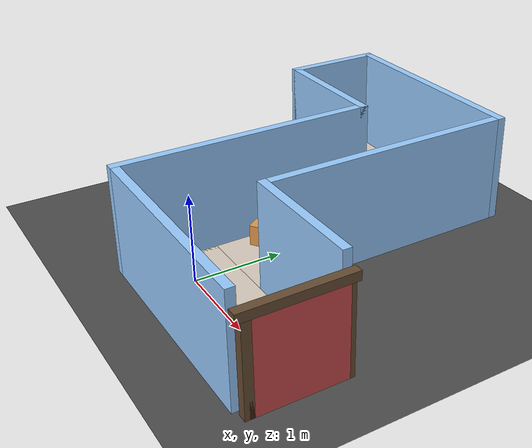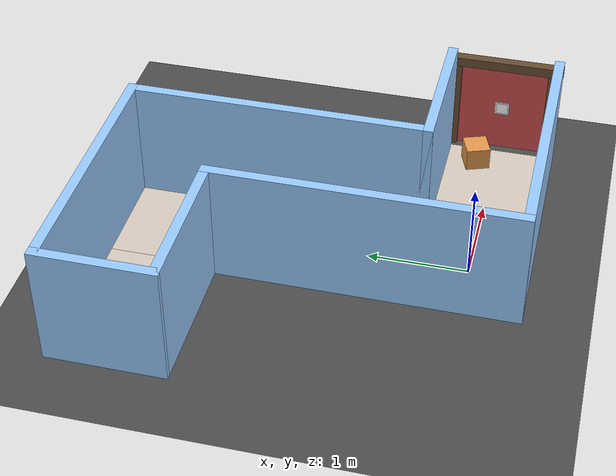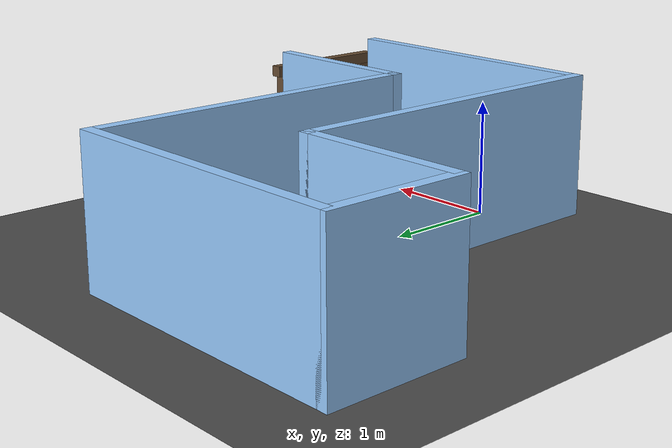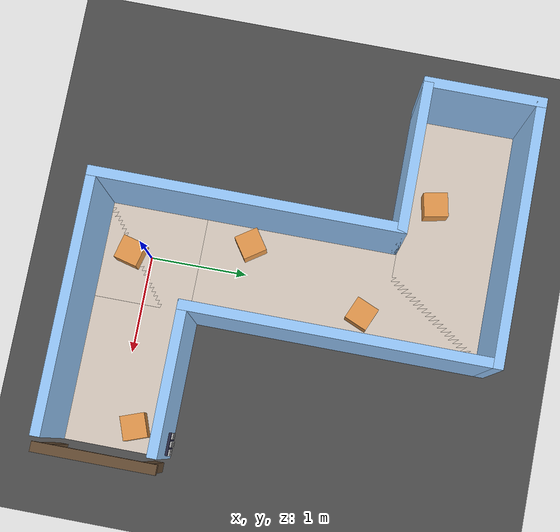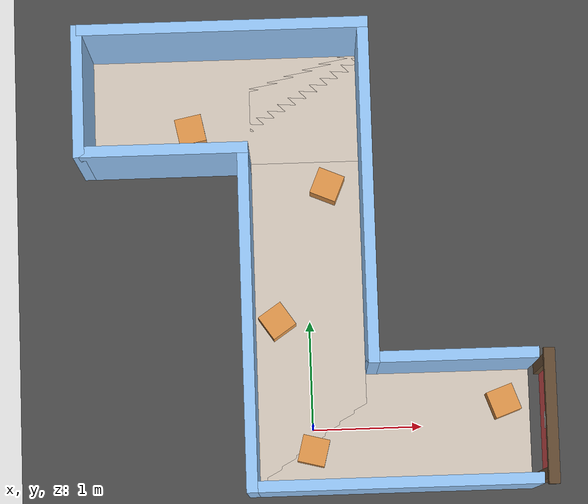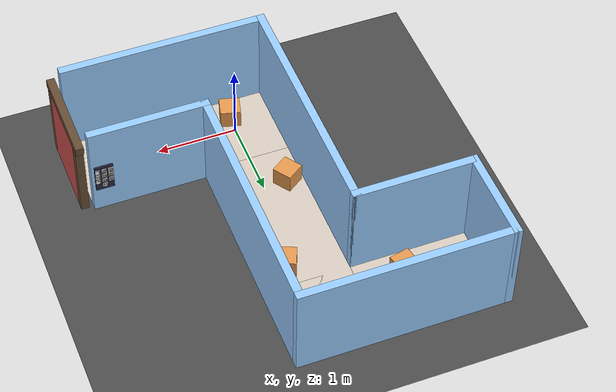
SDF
<?xml version="1.0" ?>
<sdf version="1.6">
  <world name="escape_room">

    <!-- Basic physics and lighting -->
    <physics name='default_physics' default='0' type='ode'>
      <gravity>0 0 -9.8066</gravity>
    </physics>

    <light type="directional" name="sun">
      <cast_shadows>true</cast_shadows>
      <pose>0 0 10 0 0 0</pose>
      <diffuse>0.8 0.8 0.8 1</diffuse>
      <specular>0.2 0.2 0.2 1</specular>
      <direction>-0.5 0.1 -0.9</direction>
    </light>

    <!-- Ground plane -->
    <model name="ground_plane">
      <static>true</static>
      <link name="link">
        <collision name="collision">
          <geometry>
            <plane>
              <normal>0 0 1</normal>
              <size>50 50</size>
            </plane>
          </geometry>
        </collision>
        <visual name="visual">
          <geometry>
            <plane>
              <normal>0 0 1</normal>
              <size>50 50</size>
            </plane>
          </geometry>
          <material>
            <ambient>0.3 0.3 0.3 1</ambient>
            <diffuse>0.3 0.3 0.3 1</diffuse>
          </material>
        </visual>
      </link>
    </model>

    <!-- Corridor floors -->
    <include>
      <uri>model://corridor_floor_bottom</uri>
      <name>floor_bottom</name>
      <pose>0.75 0 0.005 0 0 0</pose>
    </include>

    <include>
      <uri>model://corridor_floor_vertical</uri>
      <name>floor_vertical</name>
      <pose>0 1.5 0.005 0 0 0</pose>
    </include>

    <include>
      <uri>model://corridor_floor_top</uri>
      <name>floor_top</name>
      <pose>-0.75 3 0.005 0 0 0</pose>
    </include>

    <!-- Corridor walls -->
    <include>
      <uri>model://corridor_wall_bottom_south</uri>
      <name>wall_bottom_south</name>
      <pose>0.75 -0.55 0.625 0 0 0</pose>
    </include>

    <include>
      <uri>model://corridor_wall_bottom_north</uri>
      <name>wall_bottom_north</name>
      <pose>1.25 0.55 0.625 0 0 0</pose>
    </include>

    <include>
      <uri>model://corridor_wall_vertical_east</uri>
      <name>wall_vertical_east</name>
      <pose>0.55 2 0.625 0 0 0</pose>
    </include>

    <include>
      <uri>model://corridor_wall_vertical_west</uri>
      <name>wall_vertical_west</name>
      <pose>-0.55 0.95 0.625 0 0 0</pose>
    </include>

    <include>
      <uri>model://corridor_wall_top_south</uri>
      <name>wall_top_south</name>
      <pose>-1.25 2.45 0.625 0 0 0</pose>
    </include>

    <include>
      <uri>model://corridor_wall_top_north</uri>
      <name>wall_top_north</name>
      <pose>-0.7 3.55 0.625 0 0 0</pose>
    </include>

    <include>
      <uri>model://corridor_wall_top_west</uri>
      <name>wall_top_west</name>
      <pose>-2 3 0.625 0 0 0</pose>
    </include>

    <!-- Sliding exit door at the corridor end -->
    <include>
      <uri>model://exit_door</uri>
      <name>exit_door_main</name>
      <pose>2.1 0 0 0 0 1.5708</pose>
      <scale>0.5 0.5 0.5</scale>
    </include>

    <!-- Corridor obstacles -->
    <include>
      <uri>model://box_obstacle</uri>
      <name>obstacle_bottom_east</name>
      <pose>1.75 0.2 0.125 0 0 0.35</pose>
      <scale>1.4 0.8 1.1</scale>
    </include>

    <include>
      <uri>model://box_obstacle</uri>
      <name>obstacle_bottom_west</name>
      <pose>0.0 -0.2 0.125 0 0 -0.25</pose>
      <scale>0.8 1.2 0.9</scale>
    </include>

    <include>
      <uri>model://box_obstacle</uri>
      <name>obstacle_corner</name>
      <pose>-0.3 1.0 0.125 0 0 0.6</pose>
      <scale>1.1 1.0 1.0</scale>
    </include>

    <include>
      <uri>model://box_obstacle</uri>
      <name>obstacle_vertical_north</name>
      <pose>0.2 2.25 0.125 0 0 -0.4</pose>
      <scale>0.9 1.3 1.2</scale>
    </include>

    <include>
      <uri>model://box_obstacle</uri>
      <name>obstacle_top</name>
      <pose>-1.05 2.80 0.125 0 0 0.2</pose>
      <scale>1.3 0.9 1.0</scale>
    </include>

    <!-- Keypad mounted on the north wall near the exit -->
    <include>
      <uri>model://keypad</uri>
      <name>keypad_panel</name>
      <pose>1.85 0.625 0.55 0 0 0</pose>
      <scale>0.5 0.5 0.5</scale>
    </include>

    <plugin
      filename="gz-sim-physics-system"
      name="gz::sim::systems::Physics">
    </plugin>
    <plugin
      filename="gz-sim-user-commands-system"
      name="gz::sim::systems::UserCommands">
    </plugin>
    <plugin
      filename="gz-sim-scene-broadcaster-system"
      name="gz::sim::systems::SceneBroadcaster">
    </plugin>

  </world>
</sdf>

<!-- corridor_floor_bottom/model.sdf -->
<sdf version="1.6">
  <model name="corridor_floor_bottom">
    <static>true</static>
    <link name="link">
      <pose>0 0 0 0 0 0</pose>
      <visual name="visual">
        <geometry>
          <box>
            <size>2.5 1 0.01</size>
          </box>
        </geometry>
        <material>
          <ambient>0.8 0.75 0.7 1</ambient>
          <diffuse>0.85 0.8 0.75 1</diffuse>
          <specular>0.2 0.2 0.2 1</specular>
        </material>
      </visual>
      <collision name="collision">
        <geometry>
          <box>
            <size>3 1 0.01</size>
          </box>
        </geometry>
      </collision>
    </link>
  </model>
</sdf>

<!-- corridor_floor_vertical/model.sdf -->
<sdf version="1.6">
  <model name="corridor_floor_vertical">
    <static>true</static>
    <link name="link">
      <pose>0 0 0 0 0 0</pose>
      <visual name="visual">
        <geometry>
          <box>
            <size>1 4 0.01</size>
          </box>
        </geometry>
        <material>
          <ambient>0.8 0.75 0.7 1</ambient>
          <diffuse>0.85 0.8 0.75 1</diffuse>
          <specular>0.2 0.2 0.2 1</specular>
        </material>
      </visual>
      <collision name="collision">
        <geometry>
          <box>
            <size>1 4 0.01</size>
          </box>
        </geometry>
      </collision>
    </link>
  </model>
</sdf>

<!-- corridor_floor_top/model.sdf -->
<sdf version="1.6">
  <model name="corridor_floor_top">
    <static>true</static>
    <link name="link">
      <pose>0 0 0 0 0 0</pose>
      <visual name="visual">
        <geometry>
          <box>
            <size>2.5 1 0.01</size>
          </box>
        </geometry>
        <material>
          <ambient>0.8 0.75 0.7 1</ambient>
          <diffuse>0.85 0.8 0.75 1</diffuse>
          <specular>0.2 0.2 0.2 1</specular>
        </material>
      </visual>
      <collision name="collision">
        <geometry>
          <box>
            <size>3 1 0.01</size>
          </box>
        </geometry>
      </collision>
    </link>
  </model>
</sdf>

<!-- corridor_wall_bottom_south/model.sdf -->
<sdf version="1.6">
  <model name="corridor_wall_bottom_south">
    <static>true</static>
    <link name="link">
      <pose>0 0 0 0 0 0</pose>
      <visual name="visual">
        <geometry>
          <box>
            <size>2.5 0.1 1.25</size>
          </box>
        </geometry>
        <material>
          <ambient>0.5 0.7 0.9 1</ambient>
          <diffuse>0.6 0.8 1.0 1</diffuse>
          <specular>0.15 0.15 0.2 1</specular>
        </material>
      </visual>
      <collision name="collision">
        <geometry>
          <box>
            <size>2.5 0.1 1.25</size>
          </box>
        </geometry>
      </collision>
    </link>
  </model>
</sdf>

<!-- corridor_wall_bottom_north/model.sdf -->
<sdf version="1.6">
  <model name="corridor_wall_bottom_north">
    <static>true</static>
    <link name="link">
      <pose>0 0 0 0 0 0</pose>
      <visual name="visual">
        <geometry>
          <box>
            <size>1.5 0.1 1.25</size>
          </box>
        </geometry>
        <material>
          <ambient>0.5 0.7 0.9 1</ambient>
          <diffuse>0.6 0.8 1.0 1</diffuse>
          <specular>0.15 0.15 0.2 1</specular>
        </material>
      </visual>
      <collision name="collision">
        <geometry>
          <box>
            <size>1.5 0.1 1.25</size>
          </box>
        </geometry>
      </collision>
    </link>
  </model>
</sdf>

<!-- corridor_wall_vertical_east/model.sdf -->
<sdf version="1.6">
  <model name="corridor_wall_vertical_east">
    <static>true</static>
    <link name="link">
      <pose>0 0 0 0 0 0</pose>
      <visual name="visual">
        <geometry>
          <box>
            <size>0.1 3 1.25</size>
          </box>
        </geometry>
        <material>
          <ambient>0.5 0.7 0.9 1</ambient>
          <diffuse>0.6 0.8 1.0 1</diffuse>
          <specular>0.15 0.15 0.2 1</specular>
        </material>
      </visual>
      <collision name="collision">
        <geometry>
          <box>
            <size>0.1 4 1.25</size>
          </box>
        </geometry>
      </collision>
    </link>
  </model>
</sdf>

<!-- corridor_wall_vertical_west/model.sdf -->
<sdf version="1.6">
  <model name="corridor_wall_vertical_west">
    <static>true</static>
    <link name="link">
      <pose>0 0 0 0 0 0</pose>
      <visual name="visual">
        <geometry>
          <box>
            <size>0.1 3.1 1.25</size>
          </box>
        </geometry>
        <material>
          <ambient>0.5 0.7 0.9 1</ambient>
          <diffuse>0.6 0.8 1.0 1</diffuse>
          <specular>0.15 0.15 0.2 1</specular>
        </material>
      </visual>
      <collision name="collision">
        <geometry>
          <box>
            <size>0.1 3 1.25</size>
          </box>
        </geometry>
      </collision>
    </link>
  </model>
</sdf>

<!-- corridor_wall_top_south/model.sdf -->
<sdf version="1.6">
  <model name="corridor_wall_top_south">
    <static>true</static>
    <link name="link">
      <pose>0 0 0 0 0 0</pose>
      <visual name="visual">
        <geometry>
          <box>
            <size>1.5 0.1 1.25</size>
          </box>
        </geometry>
        <material>
          <ambient>0.5 0.7 0.9 1</ambient>
          <diffuse>0.6 0.8 1.0 1</diffuse>
          <specular>0.15 0.15 0.2 1</specular>
        </material>
      </visual>
      <collision name="collision">
        <geometry>
          <box>
            <size>1.5 0.1 1.25</size>
          </box>
        </geometry>
      </collision>
    </link>
  </model>
</sdf>

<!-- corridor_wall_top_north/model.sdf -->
<sdf version="1.6">
  <model name="corridor_wall_top_north">
    <static>true</static>
    <link name="link">
      <pose>0 0 0 0 0 0</pose>
      <visual name="visual">
        <geometry>
          <box>
            <size>2.6 0.1 1.25</size>
          </box>
        </geometry>
        <material>
          <ambient>0.5 0.7 0.9 1</ambient>
          <diffuse>0.6 0.8 1.0 1</diffuse>
          <specular>0.15 0.15 0.2 1</specular>
        </material>
      </visual>
      <collision name="collision">
        <geometry>
          <box>
            <size>2.5 0.1 1.25</size>
          </box>
        </geometry>
      </collision>
    </link>
  </model>
</sdf>

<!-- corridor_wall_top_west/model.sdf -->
<sdf version="1.6">
  <model name="corridor_wall_top_west">
    <static>true</static>
    <link name="link">
      <pose>0 0 0 0 0 0</pose>
      <visual name="visual">
        <geometry>
          <box>
            <size>0.1 1.2 1.25</size>
          </box>
        </geometry>
        <material>
          <ambient>0.5 0.7 0.9 1</ambient>
          <diffuse>0.6 0.8 1.0 1</diffuse>
          <specular>0.15 0.15 0.2 1</specular>
        </material>
      </visual>
      <collision name="collision">
        <geometry>
          <box>
            <size>0.1 1.2 1.25</size>
          </box>
        </geometry>
      </collision>
    </link>
  </model>
</sdf>

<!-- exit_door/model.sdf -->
<sdf version="1.6">
  <model name="exit_door">
    <static>false</static>

    <!-- Rigid door frame that stays fixed to the world -->
    <link name="door_frame">
      <pose>0 0 0 0 0 0</pose>
      <inertial>
        <mass>10.0</mass>
        <inertia>
          <ixx>1.0</ixx>
          <ixy>0</ixy>
          <ixz>0</ixz>
          <iyy>1.0</iyy>
          <iyz>0</iyz>
          <izz>1.0</izz>
        </inertia>
      </inertial>

      <!-- Left frame upright -->
      <collision name="frame_left_collision">
        <pose>-0.5 0 0.5 0 0 0</pose>
        <geometry>
          <box>
            <size>0.1 0.1 1.0</size>
          </box>
        </geometry>
      </collision>
      <visual name="frame_left_visual">
        <pose>-0.5 0 0.5 0 0 0</pose>
        <geometry>
          <box>
            <size>0.1 0.1 1.0</size>
          </box>
        </geometry>
        <material>
          <ambient>0.4 0.3 0.2 1</ambient>
          <diffuse>0.4 0.3 0.2 1</diffuse>
          <specular>0.1 0.1 0.1 1</specular>
        </material>
      </visual>

      <!-- Right frame upright -->
      <collision name="frame_right_collision">
        <pose>0.5 0 0.5 0 0 0</pose>
        <geometry>
          <box>
            <size>0.1 0.1 1.0</size>
          </box>
        </geometry>
      </collision>
      <visual name="frame_right_visual">
        <pose>0.5 0 0.5 0 0 0</pose>
        <geometry>
          <box>
            <size>0.1 0.1 1.0</size>
          </box>
        </geometry>
        <material>
          <ambient>0.4 0.3 0.2 1</ambient>
          <diffuse>0.4 0.3 0.2 1</diffuse>
          <specular>0.1 0.1 0.1 1</specular>
        </material>
      </visual>

      <!-- Frame top beam -->
      <collision name="frame_top_collision">
        <pose>0 0 1.05 0 0 0</pose>
        <geometry>
          <box>
            <size>1.2 0.1 0.1</size>
          </box>
        </geometry>
      </collision>
      <visual name="frame_top_visual">
        <pose>0 0 1.05 0 0 0</pose>
        <geometry>
          <box>
            <size>1.2 0.1 0.1</size>
          </box>
        </geometry>
        <material>
          <ambient>0.4 0.3 0.2 1</ambient>
          <diffuse>0.4 0.3 0.2 1</diffuse>
          <specular>0.1 0.1 0.1 1</specular>
        </material>
      </visual>
    </link>

    <!-- Sliding door panel -->
    <link name="door_panel">
      <pose>0 -0.025 0.5 0 0 0</pose>
      <inertial>
        <mass>4.0</mass>
        <inertia>
          <ixx>1.3367</ixx>
          <ixy>0</ixy>
          <ixz>0</ixz>
          <iyy>2.6667</iyy>
          <iyz>0</iyz>
          <izz>1.3367</izz>
        </inertia>
      </inertial>
      <collision name="panel_collision">
        <geometry>
          <box>
            <size>1.0 0.05 1.0</size>
          </box>
        </geometry>
      </collision>
      <visual name="panel_visual">
        <geometry>
          <box>
            <size>1.0 0.05 1.0</size>
          </box>
        </geometry>
        <material>
          <ambient>0.6 0.2 0.2 1</ambient>
          <diffuse>0.8 0.3 0.3 1</diffuse>
          <specular>0.2 0.2 0.2 1</specular>
        </material>
      </visual>
      <!-- White backing plate for the ArUco marker -->
      <visual name="marker_backing_visual">
        <pose>0 0.0275 0.0 0 0 0</pose>
        <geometry>
          <box>
            <size>0.15 0.005 0.15</size>
          </box>
        </geometry>
        <material>
          <ambient>0.95 0.95 0.95 1</ambient>
          <diffuse>0.98 0.98 0.98 1</diffuse>
          <specular>0.3 0.3 0.3 1</specular>
        </material>
      </visual>
      <!-- ArUco marker visual attached to the door panel (corridor-facing side) -->
      <visual name="aruco_marker_visual">
        <pose>0 0.0305 0.0 0 0 0</pose>
        <geometry>
          <box>
            <size>0.12 0.0005 0.12</size>
          </box>
        </geometry>
        <material>
          <ambient>1 1 1 1</ambient>
          <diffuse>1 1 1 1</diffuse>
          <specular>0.1 0.1 0.1 1</specular>
          <pbr>
            <metal>
              <albedo_map>model://exit_door/aruco_tag.png</albedo_map>
            </metal>
          </pbr>
        </material>
      </visual>
    </link>

    <!-- Fix the frame to the world so that only the panel moves -->
    <joint name="frame_world_fixed" type="fixed">
      <parent>world</parent>
      <child>door_frame</child>
    </joint>

    <!-- Prismatic joint for the sliding panel -->
    <joint name="door_slide" type="prismatic">
      <parent>door_frame</parent>
      <child>door_panel</child>
      <pose>0 0 1.0 0 0 0</pose>
      <axis>
        <xyz>1 0 0</xyz>
        <use_parent_model_frame>true</use_parent_model_frame>
        <limit>
          <lower>0.0</lower>
          <upper>0.9</upper>
        </limit>
        <dynamics>
          <damping>4.5</damping>
          <friction>0.3</friction>
        </dynamics>
      </axis>
    </joint>

    <!-- Gazebo system plugin that listens to /door_slide/cmd_pos and applies the desired offset -->
    <plugin filename="ignition-gazebo-joint-position-controller-system"
            name="ignition::gazebo::systems::JointPositionController">
      <joint_name>door_slide</joint_name>
      <topic>/door_slide/cmd_pos</topic>
      <p_gain>4.0</p_gain>
      <i_gain>0.5</i_gain>
      <d_gain>0.5</d_gain>
    </plugin>

  </model>
</sdf>

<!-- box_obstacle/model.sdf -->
<sdf version="1.6">
  <model name="box_obstacle">
    <static>true</static>
    <link name="link">
      <collision name="collision">
        <geometry>
          <box>
            <size>0.25 0.25 0.25</size>
          </box>
        </geometry>
      </collision>
      <visual name="visual">
        <geometry>
          <box>
            <size>0.25 0.25 0.25</size>
          </box>
        </geometry>
        <material>
          <ambient>0.8 0.5 0.2 1</ambient>
          <diffuse>0.9 0.6 0.3 1</diffuse>
          <specular>0.2 0.2 0.2 1</specular>
        </material>
      </visual>
    </link>
  </model>
</sdf>

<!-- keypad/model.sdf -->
<sdf version="1.6">
  <model name="keypad">
    <static>true</static>

    <link name="panel">
      <pose>0 0 0 0 0 0</pose>
      <inertial>
        <mass>0.5</mass>
        <inertia>
          <ixx>0.004</ixx>
          <ixy>0</ixy>
          <ixz>0</ixz>
          <iyy>0.002</iyy>
          <iyz>0</iyz>
          <izz>0.004</izz>
        </inertia>
      </inertial>
      <collision name="collision">
        <geometry>
          <box>
            <size>0.225 0.025 0.375</size>
          </box>
        </geometry>
      </collision>
      <visual name="panel_visual">
        <geometry>
          <box>
            <size>0.225 0.025 0.375</size>
          </box>
        </geometry>
        <material>
          <ambient>0.1 0.1 0.18 1</ambient>
          <diffuse>0.15 0.15 0.25 1</diffuse>
          <specular>0.4 0.4 0.4 1</specular>
        </material>
      </visual>

      <!-- Button geometry -->
      <visual name="button_1">
        <pose>0.08 0.02 0.12 0 0 0</pose>
        <geometry>
          <box>
            <size>0.06 0.01 0.06</size>
          </box>
        </geometry>
        <material>
          <ambient>0.82 0.82 0.82 1</ambient>
          <diffuse>0.93 0.93 0.93 1</diffuse>
          <specular>0.5 0.5 0.5 1</specular>
        </material>
      </visual>
      <visual name="button_2">
        <pose>0.0 0.02 0.12 0 0 0</pose>
        <geometry>
          <box>
            <size>0.06 0.01 0.06</size>
          </box>
        </geometry>
        <material>
          <ambient>0.82 0.82 0.82 1</ambient>
          <diffuse>0.93 0.93 0.93 1</diffuse>
          <specular>0.5 0.5 0.5 1</specular>
        </material>
      </visual>
      <visual name="button_3">
        <pose>-0.08 0.02 0.12 0 0 0</pose>
        <geometry>
          <box>
            <size>0.06 0.01 0.06</size>
          </box>
        </geometry>
        <material>
          <ambient>0.82 0.82 0.82 1</ambient>
          <diffuse>0.93 0.93 0.93 1</diffuse>
          <specular>0.5 0.5 0.5 1</specular>
        </material>
      </visual>
      <visual name="button_4">
        <pose>0.08 0.02 0.04 0 0 0</pose>
        <geometry>
          <box>
            <size>0.06 0.01 0.06</size>
          </box>
        </geometry>
        <material>
          <ambient>0.82 0.82 0.82 1</ambient>
          <diffuse>0.93 0.93 0.93 1</diffuse>
          <specular>0.5 0.5 0.5 1</specular>
        </material>
      </visual>
      <visual name="button_5">
        <pose>0.0 0.02 0.04 0 0 0</pose>
        <geometry>
          <box>
            <size>0.06 0.01 0.06</size>
          </box>
        </geometry>
        <material>
          <ambient>0.82 0.82 0.82 1</ambient>
          <diffuse>0.93 0.93 0.93 1</diffuse>
          <specular>0.5 0.5 0.5 1</specular>
        </material>
      </visual>
      <visual name="button_6">
        <pose>-0.08 0.02 0.04 0 0 0</pose>
        <geometry>
          <box>
            <size>0.06 0.01 0.06</size>
          </box>
        </geometry>
        <material>
          <ambient>0.82 0.82 0.82 1</ambient>
          <diffuse>0.93 0.93 0.93 1</diffuse>
          <specular>0.5 0.5 0.5 1</specular>
        </material>
      </visual>
      <visual name="button_7">
        <pose>0.08 0.02 -0.04 0 0 0</pose>
        <geometry>
          <box>
            <size>0.06 0.01 0.06</size>
          </box>
        </geometry>
        <material>
          <ambient>0.82 0.82 0.82 1</ambient>
          <diffuse>0.93 0.93 0.93 1</diffuse>
          <specular>0.5 0.5 0.5 1</specular>
        </material>
      </visual>
      <visual name="button_8">
        <pose>0.0 0.02 -0.04 0 0 0</pose>
        <geometry>
          <box>
            <size>0.06 0.01 0.06</size>
          </box>
        </geometry>
        <material>
          <ambient>0.82 0.82 0.82 1</ambient>
          <diffuse>0.93 0.93 0.93 1</diffuse>
          <specular>0.5 0.5 0.5 1</specular>
        </material>
      </visual>
      <visual name="button_9">
        <pose>-0.08 0.02 -0.04 0 0 0</pose>
        <geometry>
          <box>
            <size>0.06 0.01 0.06</size>
          </box>
        </geometry>
        <material>
          <ambient>0.82 0.82 0.82 1</ambient>
          <diffuse>0.93 0.93 0.93 1</diffuse>
          <specular>0.5 0.5 0.5 1</specular>
        </material>
      </visual>
      <visual name="button_0">
        <pose>0.0 0.02 -0.12 0 0 0</pose>
        <geometry>
          <box>
            <size>0.06 0.01 0.06</size>
          </box>
        </geometry>
        <material>
          <ambient>0.82 0.82 0.82 1</ambient>
          <diffuse>0.93 0.93 0.93 1</diffuse>
          <specular>0.5 0.5 0.5 1</specular>
        </material>
      </visual>

      <!-- 7-segment style number overlays -->
      <!-- button 1 -->
      <visual name="button_1_seg_b">
        <pose>0.0625 0.026 0.1275 0 0 3.14159</pose>
        <geometry>
          <box>
            <size>0.006 0.002 0.03</size>
          </box>
        </geometry>
        <material>
          <ambient>0 0 0 1</ambient>
          <diffuse>0 0 0 1</diffuse>
        </material>
      </visual>
      <visual name="button_1_seg_c">
        <pose>0.0625 0.026 0.1125 0 0 3.14159</pose>
        <geometry>
          <box>
            <size>0.006 0.002 0.03</size>
          </box>
        </geometry>
        <material>
          <ambient>0 0 0 1</ambient>
          <diffuse>0 0 0 1</diffuse>
        </material>
      </visual>
      <!-- button 2 -->
      <visual name="button_2_seg_a">
        <pose>0 0.026 0.1375 0 0 3.14159</pose>
        <geometry>
          <box>
            <size>0.03 0.002 0.005</size>
          </box>
        </geometry>
        <material>
          <ambient>0 0 0 1</ambient>
          <diffuse>0 0 0 1</diffuse>
        </material>
      </visual>
      <visual name="button_2_seg_b">
        <pose>-0.0175 0.026 0.1275 0 0 3.14159</pose>
        <geometry>
          <box>
            <size>0.006 0.002 0.03</size>
          </box>
        </geometry>
        <material>
          <ambient>0 0 0 1</ambient>
          <diffuse>0 0 0 1</diffuse>
        </material>
      </visual>
      <visual name="button_2_seg_g">
        <pose>0 0.026 0.12 0 0 3.14159</pose>
        <geometry>
          <box>
            <size>0.03 0.002 0.005</size>
          </box>
        </geometry>
        <material>
          <ambient>0 0 0 1</ambient>
          <diffuse>0 0 0 1</diffuse>
        </material>
      </visual>
      <visual name="button_2_seg_e">
        <pose>0.0175 0.026 0.1125 0 0 3.14159</pose>
        <geometry>
          <box>
            <size>0.006 0.002 0.03</size>
          </box>
        </geometry>
        <material>
          <ambient>0 0 0 1</ambient>
          <diffuse>0 0 0 1</diffuse>
        </material>
      </visual>
      <visual name="button_2_seg_d">
        <pose>0 0.026 0.1025 0 0 3.14159</pose>
        <geometry>
          <box>
            <size>0.03 0.002 0.005</size>
          </box>
        </geometry>
        <material>
          <ambient>0 0 0 1</ambient>
          <diffuse>0 0 0 1</diffuse>
        </material>
      </visual>
      <!-- button 3 -->
      <visual name="button_3_seg_a">
        <pose>-0.08 0.026 0.1375 0 0 3.14159</pose>
        <geometry>
          <box>
            <size>0.03 0.002 0.005</size>
          </box>
        </geometry>
        <material>
          <ambient>0 0 0 1</ambient>
          <diffuse>0 0 0 1</diffuse>
        </material>
      </visual>
      <visual name="button_3_seg_b">
        <pose>-0.0975 0.026 0.1275 0 0 3.14159</pose>
        <geometry>
          <box>
            <size>0.006 0.002 0.03</size>
          </box>
        </geometry>
        <material>
          <ambient>0 0 0 1</ambient>
          <diffuse>0 0 0 1</diffuse>
        </material>
      </visual>
      <visual name="button_3_seg_g">
        <pose>-0.08 0.026 0.12 0 0 3.14159</pose>
        <geometry>
          <box>
            <size>0.03 0.002 0.005</size>
          </box>
        </geometry>
        <material>
          <ambient>0 0 0 1</ambient>
          <diffuse>0 0 0 1</diffuse>
        </material>
      </visual>
      <visual name="button_3_seg_c">
        <pose>-0.0975 0.026 0.1125 0 0 3.14159</pose>
        <geometry>
          <box>
            <size>0.006 0.002 0.03</size>
          </box>
        </geometry>
        <material>
          <ambient>0 0 0 1</ambient>
          <diffuse>0 0 0 1</diffuse>
        </material>
      </visual>
      <visual name="button_3_seg_d">
        <pose>-0.08 0.026 0.1025 0 0 3.14159</pose>
        <geometry>
          <box>
            <size>0.03 0.002 0.005</size>
          </box>
        </geometry>
        <material>
          <ambient>0 0 0 1</ambient>
          <diffuse>0 0 0 1</diffuse>
        </material>
      </visual>
      <!-- button 4 -->
      <visual name="button_4_seg_f">
        <pose>0.0975 0.026 0.0475 0 0 3.14159</pose>
        <geometry>
          <box>
            <size>0.006 0.002 0.03</size>
          </box>
        </geometry>
        <material>
          <ambient>0 0 0 1</ambient>
          <diffuse>0 0 0 1</diffuse>
        </material>
      </visual>
      <visual name="button_4_seg_g">
        <pose>0.08 0.026 0.04 0 0 3.14159</pose>
        <geometry>
          <box>
            <size>0.03 0.002 0.005</size>
          </box>
        </geometry>
        <material>
          <ambient>0 0 0 1</ambient>
          <diffuse>0 0 0 1</diffuse>
        </material>
      </visual>
      <visual name="button_4_seg_b">
        <pose>0.0625 0.026 0.0475 0 0 3.14159</pose>
        <geometry>
          <box>
            <size>0.006 0.002 0.03</size>
          </box>
        </geometry>
        <material>
          <ambient>0 0 0 1</ambient>
          <diffuse>0 0 0 1</diffuse>
        </material>
      </visual>
      <visual name="button_4_seg_c">
        <pose>0.0625 0.026 0.0325 0 0 3.14159</pose>
        <geometry>
          <box>
            <size>0.006 0.002 0.03</size>
          </box>
        </geometry>
        <material>
          <ambient>0 0 0 1</ambient>
          <diffuse>0 0 0 1</diffuse>
        </material>
      </visual>
      <!-- button 5 -->
      <visual name="button_5_seg_a">
        <pose>0 0.026 0.0575 0 0 3.14159</pose>
        <geometry>
          <box>
            <size>0.03 0.002 0.005</size>
          </box>
        </geometry>
        <material>
          <ambient>0 0 0 1</ambient>
          <diffuse>0 0 0 1</diffuse>
        </material>
      </visual>
      <visual name="button_5_seg_f">
        <pose>0.0175 0.026 0.0475 0 0 3.14159</pose>
        <geometry>
          <box>
            <size>0.006 0.002 0.03</size>
          </box>
        </geometry>
        <material>
          <ambient>0 0 0 1</ambient>
          <diffuse>0 0 0 1</diffuse>
        </material>
      </visual>
      <visual name="button_5_seg_g">
        <pose>0 0.026 0.04 0 0 3.14159</pose>
        <geometry>
          <box>
            <size>0.03 0.002 0.005</size>
          </box>
        </geometry>
        <material>
          <ambient>0 0 0 1</ambient>
          <diffuse>0 0 0 1</diffuse>
        </material>
      </visual>
      <visual name="button_5_seg_c">
        <pose>-0.0175 0.026 0.0325 0 0 3.14159</pose>
        <geometry>
          <box>
            <size>0.006 0.002 0.03</size>
          </box>
        </geometry>
        <material>
          <ambient>0 0 0 1</ambient>
          <diffuse>0 0 0 1</diffuse>
        </material>
      </visual>
      <visual name="button_5_seg_d">
        <pose>0 0.026 0.0225 0 0 3.14159</pose>
        <geometry>
          <box>
            <size>0.03 0.002 0.005</size>
          </box>
        </geometry>
        <material>
          <ambient>0 0 0 1</ambient>
          <diffuse>0 0 0 1</diffuse>
        </material>
      </visual>
      <!-- button 6 -->
      <visual name="button_6_seg_a">
        <pose>-0.08 0.026 0.0575 0 0 3.14159</pose>
        <geometry>
          <box>
            <size>0.03 0.002 0.005</size>
          </box>
        </geometry>
        <material>
          <ambient>0 0 0 1</ambient>
          <diffuse>0 0 0 1</diffuse>
        </material>
      </visual>
      <visual name="button_6_seg_f">
        <pose>-0.0625 0.026 0.0475 0 0 3.14159</pose>
        <geometry>
          <box>
            <size>0.006 0.002 0.03</size>
          </box>
        </geometry>
        <material>
          <ambient>0 0 0 1</ambient>
          <diffuse>0 0 0 1</diffuse>
        </material>
      </visual>
      <visual name="button_6_seg_g">
        <pose>-0.08 0.026 0.04 0 0 3.14159</pose>
        <geometry>
          <box>
            <size>0.03 0.002 0.005</size>
          </box>
        </geometry>
        <material>
          <ambient>0 0 0 1</ambient>
          <diffuse>0 0 0 1</diffuse>
        </material>
      </visual>
      <visual name="button_6_seg_e">
        <pose>-0.0625 0.026 0.0325 0 0 3.14159</pose>
        <geometry>
          <box>
            <size>0.006 0.002 0.03</size>
          </box>
        </geometry>
        <material>
          <ambient>0 0 0 1</ambient>
          <diffuse>0 0 0 1</diffuse>
        </material>
      </visual>
      <visual name="button_6_seg_c">
        <pose>-0.0975 0.026 0.0325 0 0 3.14159</pose>
        <geometry>
          <box>
            <size>0.006 0.002 0.03</size>
          </box>
        </geometry>
        <material>
          <ambient>0 0 0 1</ambient>
          <diffuse>0 0 0 1</diffuse>
        </material>
      </visual>
      <visual name="button_6_seg_d">
        <pose>-0.08 0.026 0.0225 0 0 3.14159</pose>
        <geometry>
          <box>
            <size>0.03 0.002 0.005</size>
          </box>
        </geometry>
        <material>
          <ambient>0 0 0 1</ambient>
          <diffuse>0 0 0 1</diffuse>
        </material>
      </visual>
      <!-- button 7 -->
      <visual name="button_7_seg_a">
        <pose>0.08 0.026 -0.0225 0 0 3.14159</pose>
        <geometry>
          <box>
            <size>0.03 0.002 0.005</size>
          </box>
        </geometry>
        <material>
          <ambient>0 0 0 1</ambient>
          <diffuse>0 0 0 1</diffuse>
        </material>
      </visual>
      <visual name="button_7_seg_b">
        <pose>0.0625 0.026 -0.0325 0 0 3.14159</pose>
        <geometry>
          <box>
            <size>0.006 0.002 0.03</size>
          </box>
        </geometry>
        <material>
          <ambient>0 0 0 1</ambient>
          <diffuse>0 0 0 1</diffuse>
        </material>
      </visual>
      <visual name="button_7_seg_c">
        <pose>0.0625 0.026 -0.0475 0 0 3.14159</pose>
        <geometry>
          <box>
            <size>0.006 0.002 0.03</size>
          </box>
        </geometry>
        <material>
          <ambient>0 0 0 1</ambient>
          <diffuse>0 0 0 1</diffuse>
        </material>
      </visual>
      <!-- button 8 -->
      <visual name="button_8_seg_a">
        <pose>0 0.026 -0.0225 0 0 3.14159</pose>
        <geometry>
          <box>
            <size>0.03 0.002 0.005</size>
          </box>
        </geometry>
        <material>
          <ambient>0 0 0 1</ambient>
          <diffuse>0 0 0 1</diffuse>
        </material>
      </visual>
      <visual name="button_8_seg_b">
        <pose>-0.0175 0.026 -0.0325 0 0 3.14159</pose>
        <geometry>
          <box>
            <size>0.006 0.002 0.03</size>
          </box>
        </geometry>
        <material>
          <ambient>0 0 0 1</ambient>
          <diffuse>0 0 0 1</diffuse>
        </material>
      </visual>
      <visual name="button_8_seg_c">
        <pose>-0.0175 0.026 -0.0475 0 0 3.14159</pose>
        <geometry>
          <box>
            <size>0.006 0.002 0.03</size>
          </box>
        </geometry>
        <material>
          <ambient>0 0 0 1</ambient>
          <diffuse>0 0 0 1</diffuse>
        </material>
      </visual>
      <visual name="button_8_seg_d">
        <pose>0 0.026 -0.0575 0 0 3.14159</pose>
        <geometry>
          <box>
            <size>0.03 0.002 0.005</size>
          </box>
        </geometry>
        <material>
          <ambient>0 0 0 1</ambient>
          <diffuse>0 0 0 1</diffuse>
        </material>
      </visual>
      <visual name="button_8_seg_e">
        <pose>0.0175 0.026 -0.0475 0 0 3.14159</pose>
        <geometry>
          <box>
            <size>0.006 0.002 0.03</size>
          </box>
        </geometry>
        <material>
          <ambient>0 0 0 1</ambient>
          <diffuse>0 0 0 1</diffuse>
        </material>
      </visual>
      <visual name="button_8_seg_f">
        <pose>0.0175 0.026 -0.0325 0 0 3.14159</pose>
        <geometry>
          <box>
            <size>0.006 0.002 0.03</size>
          </box>
        </geometry>
        <material>
          <ambient>0 0 0 1</ambient>
          <diffuse>0 0 0 1</diffuse>
        </material>
      </visual>
      <visual name="button_8_seg_g">
        <pose>0 0.026 -0.04 0 0 3.14159</pose>
        <geometry>
          <box>
            <size>0.03 0.002 0.005</size>
          </box>
        </geometry>
        <material>
          <ambient>0 0 0 1</ambient>
          <diffuse>0 0 0 1</diffuse>
        </material>
      </visual>
      <!-- button 9 -->
      <visual name="button_9_seg_a">
        <pose>-0.08 0.026 -0.0225 0 0 3.14159</pose>
        <geometry>
          <box>
            <size>0.03 0.002 0.005</size>
          </box>
        </geometry>
        <material>
          <ambient>0 0 0 1</ambient>
          <diffuse>0 0 0 1</diffuse>
        </material>
      </visual>
      <visual name="button_9_seg_b">
        <pose>-0.0975 0.026 -0.0325 0 0 3.14159</pose>
        <geometry>
          <box>
            <size>0.006 0.002 0.03</size>
          </box>
        </geometry>
        <material>
          <ambient>0 0 0 1</ambient>
          <diffuse>0 0 0 1</diffuse>
        </material>
      </visual>
      <visual name="button_9_seg_c">
        <pose>-0.0975 0.026 -0.0475 0 0 3.14159</pose>
        <geometry>
          <box>
            <size>0.006 0.002 0.03</size>
          </box>
        </geometry>
        <material>
          <ambient>0 0 0 1</ambient>
          <diffuse>0 0 0 1</diffuse>
        </material>
      </visual>
      <visual name="button_9_seg_d">
        <pose>-0.08 0.026 -0.0575 0 0 3.14159</pose>
        <geometry>
          <box>
            <size>0.03 0.002 0.005</size>
          </box>
        </geometry>
        <material>
          <ambient>0 0 0 1</ambient>
          <diffuse>0 0 0 1</diffuse>
        </material>
      </visual>
      <visual name="button_9_seg_f">
        <pose>-0.0625 0.026 -0.0325 0 0 3.14159</pose>
        <geometry>
          <box>
            <size>0.006 0.002 0.03</size>
          </box>
        </geometry>
        <material>
          <ambient>0 0 0 1</ambient>
          <diffuse>0 0 0 1</diffuse>
        </material>
      </visual>
      <visual name="button_9_seg_g">
        <pose>-0.08 0.026 -0.04 0 0 3.14159</pose>
        <geometry>
          <box>
            <size>0.03 0.002 0.005</size>
          </box>
        </geometry>
        <material>
          <ambient>0 0 0 1</ambient>
          <diffuse>0 0 0 1</diffuse>
        </material>
      </visual>
      <!-- button 0 -->
      <visual name="button_0_seg_a">
        <pose>0 0.026 -0.1025 0 0 3.14159</pose>
        <geometry>
          <box>
            <size>0.03 0.002 0.005</size>
          </box>
        </geometry>
        <material>
          <ambient>0 0 0 1</ambient>
          <diffuse>0 0 0 1</diffuse>
        </material>
      </visual>
      <visual name="button_0_seg_b">
        <pose>-0.0175 0.026 -0.1125 0 0 3.14159</pose>
        <geometry>
          <box>
            <size>0.006 0.002 0.03</size>
          </box>
        </geometry>
        <material>
          <ambient>0 0 0 1</ambient>
          <diffuse>0 0 0 1</diffuse>
        </material>
      </visual>
      <visual name="button_0_seg_c">
        <pose>-0.0175 0.026 -0.1275 0 0 3.14159</pose>
        <geometry>
          <box>
            <size>0.006 0.002 0.03</size>
          </box>
        </geometry>
        <material>
          <ambient>0 0 0 1</ambient>
          <diffuse>0 0 0 1</diffuse>
        </material>
      </visual>
      <visual name="button_0_seg_d">
        <pose>0 0.026 -0.1375 0 0 3.14159</pose>
        <geometry>
          <box>
            <size>0.03 0.002 0.005</size>
          </box>
        </geometry>
        <material>
          <ambient>0 0 0 1</ambient>
          <diffuse>0 0 0 1</diffuse>
        </material>
      </visual>
      <visual name="button_0_seg_e">
        <pose>0.0175 0.026 -0.1275 0 0 3.14159</pose>
        <geometry>
          <box>
            <size>0.006 0.002 0.03</size>
          </box>
        </geometry>
        <material>
          <ambient>0 0 0 1</ambient>
          <diffuse>0 0 0 1</diffuse>
        </material>
      </visual>
      <visual name="button_0_seg_f">
        <pose>0.0175 0.026 -0.1125 0 0 3.14159</pose>
        <geometry>
          <box>
            <size>0.006 0.002 0.03</size>
          </box>
        </geometry>
        <material>
          <ambient>0 0 0 1</ambient>
          <diffuse>0 0 0 1</diffuse>
        </material>
      </visual>
    </link>
  </model>
</sdf>
